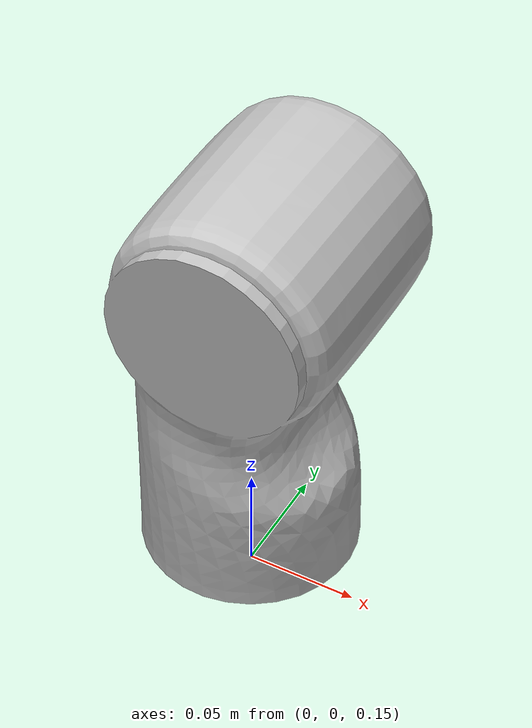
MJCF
<mujoco model="arm_r_link3">
  <default>
    <default class="visual">
      <geom group="2" type="mesh" contype="0" conaffinity="0"/>
    </default>
    <default class="collision">
      <geom group="3" type="mesh"/>
    </default>
  </default>
  <asset>
    <material name="material_arm_r_link3_0" specular="0.20000000000000004" shininess="1.0" rgba="0.76470588 0.76470588 0.76470588 1.0"/>
    <mesh file="arm_r_link3.obj"/>
  </asset>
  <worldbody>
    <body name="arm_r_link3">
      <geom material="material_arm_r_link3_0" mesh="arm_r_link3" class="visual"/>
      <geom mesh="arm_r_link3" class="collision"/>
    </body>
  </worldbody>
</mujoco>
